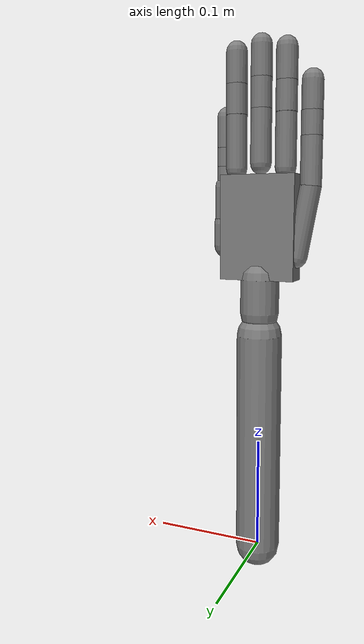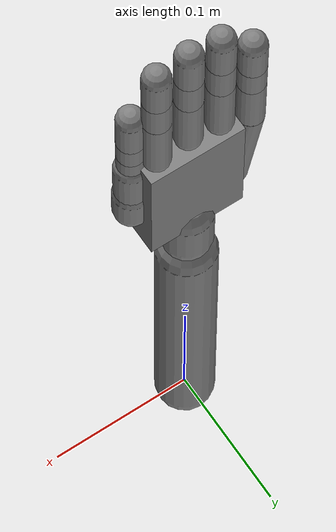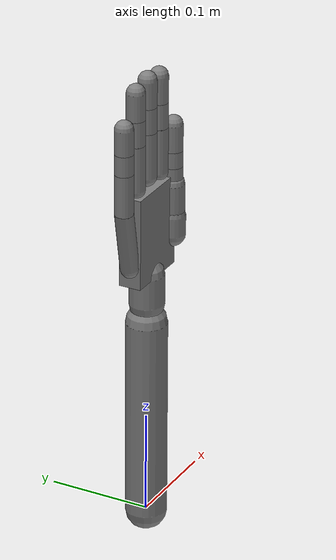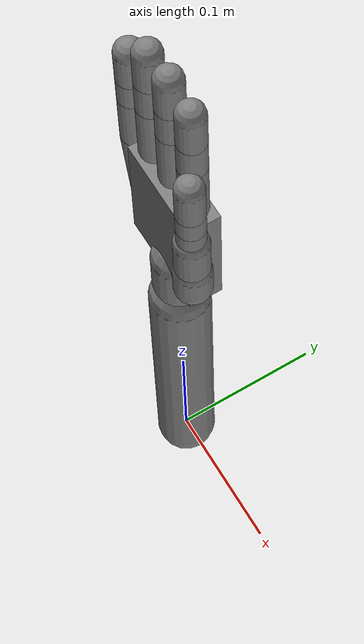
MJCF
<mujoco model="shadow_hand_approx">
    <compiler angle="degree"/>
    <option gravity="0 0 -9.81" timestep="0.002"/>

    <default>
        <joint limited="true" damping="0.1" armature="0.001"/>
        <geom type="capsule" density="1000" friction="1 0.05 0.01"/>
        <position ctrlrange="-1 1" kp="4" kv="0.1" gear="1"/>
        <default class="phalanx">
            <geom size="0.009"/>
        </default>
    </default>

    <worldbody>
        <body name="forearm" pos="0 0 0.2">
            <geom name="forearm_geom" fromto="0 0 -0.20  0 0 0" size="0.02"/>

            <body name="wrist" pos="0 0 0.02">
                <joint name="wrist_pitch" type="hinge" axis="0 1 0" range="-30 40"/>
                <joint name="wrist_yaw" type="hinge" axis="1 0 0" range="-30 10"/>
                <geom name="wrist_geom" fromto="0 0 0  0 0 0.03" size="0.017"/>

                <body name="palm" pos="0 0 0.03">
                    <geom name="palm_geom" type="box" size="0.033 0.011 0.045" pos="0 0 0.045"/>

                    <!-- First finger -->
                    <body name="ff_proximal" pos="0.022 0 0.095" childclass="phalanx">
                        <joint name="ff_abduct" type="hinge" axis="0 1 0" range="-20 20"/>
                        <joint name="ff_mcp" type="hinge" axis="1 0 0" range="0 90"/>
                        <geom name="ff_proximal_geom" fromto="0 0 0  0 0 0.045"/>
                        <body name="ff_middle" pos="0 0 0.045">
                            <joint name="ff_pip" type="hinge" axis="1 0 0" range="0 90"/>
                            <geom name="ff_middle_geom" fromto="0 0 0  0 0 0.025"/>
                            <body name="ff_distal" pos="0 0 0.025">
                                <joint name="ff_dip" type="hinge" axis="1 0 0" range="0 90"/>
                                <geom name="ff_distal_geom" fromto="0 0 0  0 0 0.026"/>
                            </body>
                        </body>
                    </body>

                    <!-- Middle finger -->
                    <body name="mf_proximal" pos="0 0 0.099" childclass="phalanx">
                        <joint name="mf_abduct" type="hinge" axis="0 1 0" range="-20 20"/>
                        <joint name="mf_mcp" type="hinge" axis="1 0 0" range="0 90"/>
                        <geom name="mf_proximal_geom" fromto="0 0 0  0 0 0.045"/>
                        <body name="mf_middle" pos="0 0 0.045">
                            <joint name="mf_pip" type="hinge" axis="1 0 0" range="0 90"/>
                            <geom name="mf_middle_geom" fromto="0 0 0  0 0 0.025"/>
                            <body name="mf_distal" pos="0 0 0.025">
                                <joint name="mf_dip" type="hinge" axis="1 0 0" range="0 90"/>
                                <geom name="mf_distal_geom" fromto="0 0 0  0 0 0.026"/>
                            </body>
                        </body>
                    </body>

                    <!-- Ring finger -->
                    <body name="rf_proximal" pos="-0.022 0 0.095" childclass="phalanx">
                        <joint name="rf_abduct" type="hinge" axis="0 1 0" range="-20 20"/>
                        <joint name="rf_mcp" type="hinge" axis="1 0 0" range="0 90"/>
                        <geom name="rf_proximal_geom" fromto="0 0 0  0 0 0.045"/>
                        <body name="rf_middle" pos="0 0 0.045">
                            <joint name="rf_pip" type="hinge" axis="1 0 0" range="0 90"/>
                            <geom name="rf_middle_geom" fromto="0 0 0  0 0 0.025"/>
                            <body name="rf_distal" pos="0 0 0.025">
                                <joint name="rf_dip" type="hinge" axis="1 0 0" range="0 90"/>
                                <geom name="rf_distal_geom" fromto="0 0 0  0 0 0.026"/>
                            </body>
                        </body>
                    </body>

                    <!-- Little finger, with its extra metacarpal DOF -->
                    <body name="lf_meta" pos="-0.033 0 0.02" childclass="phalanx">
                        <joint name="lf_meta_joint" type="hinge" axis="0.573 0 0.819" range="0 45"/>
                        <geom name="lf_meta_geom" fromto="0 0 0  -0.011 0 0.06"/>
                        <body name="lf_proximal" pos="-0.011 0 0.06">
                            <joint name="lf_abduct" type="hinge" axis="0 1 0" range="-20 20"/>
                            <joint name="lf_mcp" type="hinge" axis="1 0 0" range="0 90"/>
                            <geom name="lf_proximal_geom" fromto="0 0 0  0 0 0.04"/>
                            <body name="lf_middle" pos="0 0 0.04">
                                <joint name="lf_pip" type="hinge" axis="1 0 0" range="0 90"/>
                                <geom name="lf_middle_geom" fromto="0 0 0  0 0 0.02"/>
                                <body name="lf_distal" pos="0 0 0.02">
                                    <joint name="lf_dip" type="hinge" axis="1 0 0" range="0 90"/>
                                    <geom name="lf_distal_geom" fromto="0 0 0  0 0 0.024"/>
                                </body>
                            </body>
                        </body>
                    </body>

                    <!-- Thumb -->
                    <body name="th_base" pos="0.034 -0.009 0.029" childclass="phalanx">
                        <joint name="th_base_joint" type="hinge" axis="0 0 -1" range="-60 60"/>
                        <geom name="th_base_geom" fromto="0 0 0  0 0 0.019" size="0.012"/>
                        <body name="th_proximal" pos="0 0 0.019">
                            <joint name="th_rot" type="hinge" axis="1 0 0" range="0 70"/>
                            <geom name="th_proximal_geom" fromto="0 0 0  0 0 0.032" size="0.011"/>
                            <body name="th_hub" pos="0 0 0.032">
                                <joint name="th_hub_joint" type="hinge" axis="0 -1 0" range="-12 12"/>
                                <geom name="th_hub_geom" fromto="0 0 0  0 0 0.018"/>
                                <body name="th_middle" pos="0 0 0.018">
                                    <joint name="th_pip" type="hinge" axis="1 0 0" range="-30 30"/>
                                    <geom name="th_middle_geom" fromto="0 0 0  0 0 0.016"/>
                                    <body name="th_distal" pos="0 0 0.016">
                                        <joint name="th_dip" type="hinge" axis="0 1 0" range="-15 90"/>
                                        <geom name="th_distal_geom" fromto="0 0 0  0 0 0.026"/>
                                    </body>
                                </body>
                            </body>
                        </body>
                    </body>
                </body>
            </body>
        </body>
    </worldbody>

    <actuator>
        <position name="wrist_pitch_act" joint="wrist_pitch" kp="20"/>
        <position name="wrist_yaw_act"   joint="wrist_yaw"   kp="20"/>

        <position name="ff_abduct_act" joint="ff_abduct"/>
        <position name="ff_mcp_act"    joint="ff_mcp"/>
        <position name="ff_pip_act"    joint="ff_pip"/>

        <position name="mf_abduct_act" joint="mf_abduct"/>
        <position name="mf_mcp_act"    joint="mf_mcp"/>
        <position name="mf_pip_act"    joint="mf_pip"/>

        <position name="rf_abduct_act" joint="rf_abduct"/>
        <position name="rf_mcp_act"    joint="rf_mcp"/>
        <position name="rf_pip_act"    joint="rf_pip"/>

        <position name="lf_meta_act"   joint="lf_meta_joint"/>
        <position name="lf_abduct_act" joint="lf_abduct"/>
        <position name="lf_mcp_act"    joint="lf_mcp"/>
        <position name="lf_pip_act"    joint="lf_pip"/>

        <position name="th_base_act"   joint="th_base_joint"/>
        <position name="th_rot_act"    joint="th_rot"/>
        <position name="th_hub_act"    joint="th_hub_joint"/>
        <position name="th_pip_act"    joint="th_pip"/>
        <position name="th_dip_act"    joint="th_dip"/>
    </actuator>
</mujoco>
